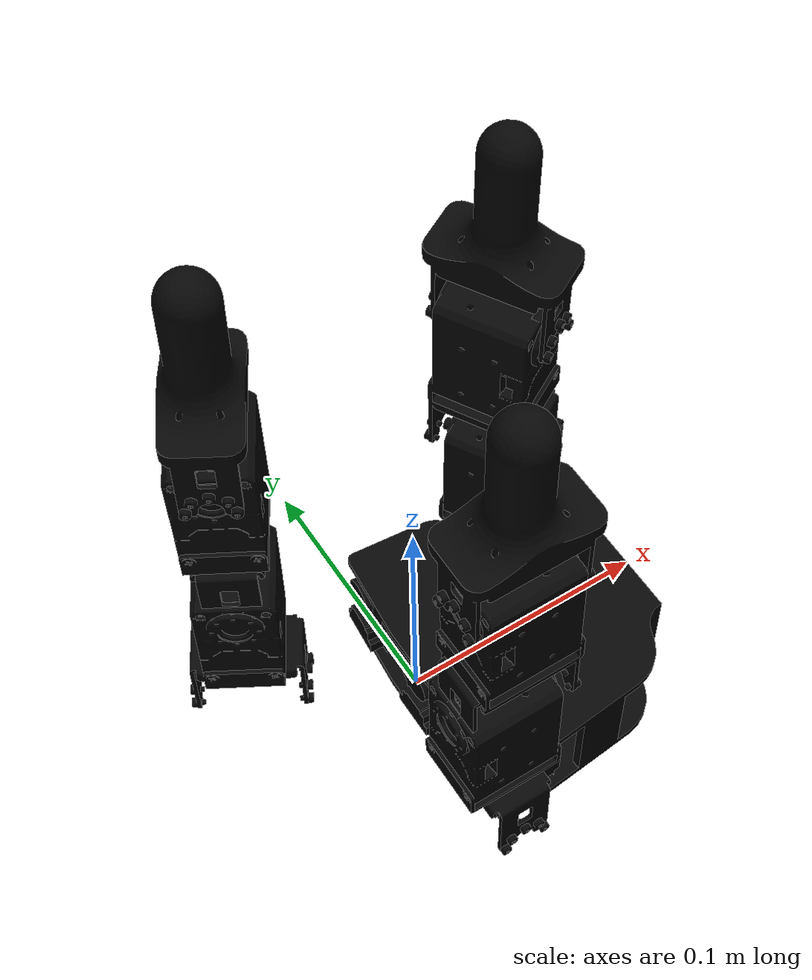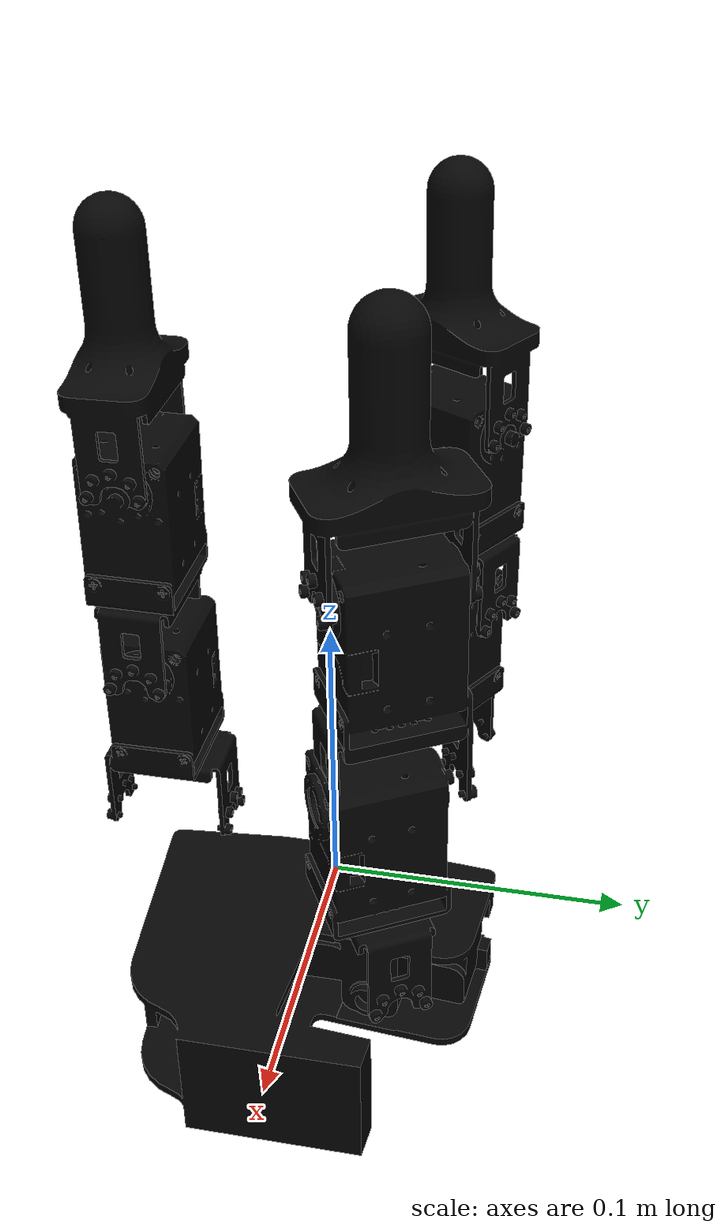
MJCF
<mujoco model="dclaw_gripper">
  <compiler angle="radian" autolimits="true" />
  <option gravity="0 0 0" timestep="0.001" />
  <visual>
    <global offwidth="3840" offheight="2160" />
  </visual>
  <asset>
    <mesh name="base_link" content_type="model/obj" file="meshes/visual/base_link.obj" />
    <mesh name="base_link_cylinder_collision000" content_type="model/obj" file="meshes/collision/base_link_cylinder_collision000.obj" />
    <mesh name="link_1" content_type="model/obj" file="meshes/visual/link_1.obj" />
    <mesh name="link_2" content_type="model/obj" file="meshes/visual/link_2.obj" />
    <mesh name="link_3" content_type="model/obj" file="meshes/visual/link_3.obj" />
    <mesh name="finger_tip_collision000" content_type="model/obj" file="meshes/collision/finger_tip_collision000.obj" />
    <material name="base_link_material" rgba="0.02352941 0.02352941 0.02352941 1" />
    <material name="link_1_material" rgba="0.02352941 0.02352941 0.02352941 1" />
    <material name="link_2_material" rgba="0.02352941 0.02352941 0.02352941 1" />
    <material name="link_3_material" rgba="0.02352941 0.02352941 0.02352941 1" />
    <texture type="skybox" builtin="gradient" rgb1="1 1 1" rgb2="1 1 1" width="32" height="512" />
  </asset>
  <worldbody>
    <light pos="0 0 5" dir="0 0 -1" directional="true" />
    <body name="hand_root">
      <body name="base_link" quat="0.707109 0 -0.707105 0">
        <inertial pos="0.0061371 0.00092103 0.0001376" quat="0.495846 0.868411 0 0" mass="0.23695" diaginertia="0.00032097 0.0001694 0.00016909" />
        <geom name="base_link_base_link_visual" type="mesh" contype="0" conaffinity="0" group="1" density="0" mesh="base_link" material="base_link_material" />
        <geom type="mesh" mesh="base_link_cylinder_collision000" group="3" />
        <geom size="0.013 0.02 0.025" pos="0.013 -0.059 -0.012" type="box" group="3" />
        <geom size="0.013 0.02 0.025" pos="0.013 0.02 0.058" quat="0.866025 0.500001 0 0" type="box" group="3" />
        <geom size="0.013 0.02 0.025" pos="0.013 0.042 -0.045" quat="0.866025 -0.500001 0 0" type="box" group="3" />
        <body name="link_f1_1" pos="0.013836 0.026467 0.054269" quat="0.258816 0.965927 0 0">
          <inertial pos="0.052938 -0.00497139 -0.000694028" quat="-6.54887e-05 0.707107 0.00116212 0.707106" mass="0.0500998" diaginertia="1.27968e-05 1.169e-05 8.46909e-06" />
          <joint name="joint_f1_0" pos="0 0 0" axis="0 -0.0015509 -0.999999" range="-0.524 1.32" actuatorfrcrange="-10 10" damping="0.1" armature="0.0002" frictionloss="0.0" />
          <geom name="link_f1_1_link_1_visual" type="mesh" contype="0" conaffinity="0" group="1" density="0" mesh="link_1" material="link_1_material" />
          <geom size="0.029 0.019 0.015" pos="0.05 -0.005 0" type="box" group="3" />
          <geom size="0.015 0.012 0.005" pos="0.013 -0.005 -0.018" type="box" group="3" />
          <geom size="0.015 0.012 0.005" pos="0.013 -0.005 0.018" type="box" group="3" />
          <body name="link_f1_2" pos="0.0684978 -0.00447059 -0.000694804">
            <inertial pos="0.0529346 4.2066e-05 -0.000658949" quat="0.000467686 0.711493 0.000697337 0.702692" mass="0.0500998" diaginertia="1.33904e-05 1.10965e-05 8.46907e-06" />
            <joint name="joint_f1_1" pos="0 0 0" axis="-0.0079404 0.999967 -0.00155082" range="-1.57 1.57" actuatorfrcrange="-10 10" damping="0.1" armature="0.0002" frictionloss="0.0" />
            <geom name="link_f1_2_link_2_visual" type="mesh" contype="0" conaffinity="0" group="1" density="0" mesh="link_2" material="link_2_material" />
            <geom size="0.029 0.018 0.015" pos="0.05 0 0" type="box" group="3" />
            <geom size="0.015 0.005 0.012" pos="0.013 0.018 0" type="box" group="3" />
            <geom size="0.015 0.005 0.012" pos="0.013 -0.018 0" type="box" group="3" />
            <body name="link_f1_3" pos="0.0684925 0.000542552 -0.000853424">
              <inertial pos="0.0442888 0.000352359 0.000434933" quat="-0.00227565 0.703618 0.00334478 0.710566" mass="0.0260029" diaginertia="8.6867e-06 7.1941e-06 3.47733e-06" />
              <joint name="joint_f1_2" pos="0 0 0" axis="0.0079404 -0.999967 0.00155082" range="-1.57 1.57" actuatorfrcrange="-10 10" damping="0.1" armature="0.0002" frictionloss="0.0" />
              <geom name="link_f1_3_link_3_visual" type="mesh" contype="0" conaffinity="0" group="1" density="0" mesh="link_3" material="link_3_material" />
              <geom type="mesh" mesh="finger_tip_collision000" group="3" />
              <geom size="0.015 0.005 0.012" pos="0.013 0.018 0" type="box" group="3" />
              <geom size="0.015 0.005 0.012" pos="0.013 -0.018 0" type="box" group="3" />
              <body name="link_f1_head" pos="0.084 0 0" />
            </body>
          </body>
        </body>
        <body name="link_f2_1" pos="0.0138356 0.0333216 -0.0509719" quat="0.258819 -0.965926 0 0">
          <inertial pos="0.0529366 0.0029921 -0.000173412" quat="-0.00232949 0.707103 0.00342611 0.707098" mass="0.0500998" diaginertia="1.27968e-05 1.169e-05 8.46909e-06" />
          <joint name="joint_f2_0" pos="0 0 0" axis="0 -0.00155087 -0.999999" range="-1.32 0.524" actuatorfrcrange="-10 10" damping="0.1" armature="0.0002" frictionloss="0.0" />
          <geom name="link_f2_1_link_1_visual" pos="0 0.008 0" quat="1 0 0 0" type="mesh" contype="0" conaffinity="0" group="1" density="0" mesh="link_1" material="link_1_material" />
          <geom size="0.029 0.019 0.015" pos="0.05 0.003 0" type="box" group="3" />
          <geom size="0.015 0.012 0.005" pos="0.013 0.003 -0.018" type="box" group="3" />
          <geom size="0.015 0.012 0.005" pos="0.013 0.003 0.018" type="box" group="3" />
          <body name="link_f2_2" pos="0.068493 0.00359253 -0.000174343">
            <inertial pos="0.0529373 0.000382054 -3.96042e-05" quat="-0.00183051 0.707365 0.00293286 0.70684" mass="0.0500998" diaginertia="1.33904e-05 1.10965e-05 8.46907e-06" />
            <joint name="joint_f2_1" pos="0 0 0" axis="-0.0143436 0.999896 -0.00155071" range="-1.57 1.57" actuatorfrcrange="-10 10" damping="0.1" armature="0.0002" frictionloss="0.0" />
            <geom name="link_f2_2_link_2_visual" type="mesh" contype="0" conaffinity="0" group="1" density="0" mesh="link_2" material="link_2_material" />
            <geom size="0.029 0.018 0.015" pos="0.05 0 0" type="box" group="3" />
            <geom size="0.015 0.005 0.012" pos="0.013 0.018 0" type="box" group="3" />
            <geom size="0.015 0.005 0.012" pos="0.013 -0.018 0" type="box" group="3" />
            <body name="link_f2_3" pos="0.0684929 0.000982456 -5.20041e-05">
              <inertial pos="0.0442877 0.000635363 3.24374e-05" quat="-0.00452546 0.706825 0.00561834 0.707351" mass="0.0260029" diaginertia="8.6867e-06 7.1941e-06 3.47733e-06" />
              <joint name="joint_f2_2" pos="0 0 0" axis="0.0143436 -0.999896 0.00155071" range="-1.57 1.57" actuatorfrcrange="-10 10" damping="0.1" armature="0.0002" frictionloss="0.0" />
              <geom name="link_f2_3_link_3_visual" type="mesh" contype="0" conaffinity="0" group="1" density="0" mesh="link_3" material="link_3_material" />
              <geom type="mesh" mesh="finger_tip_collision000" group="3" />
              <geom size="0.015 0.005 0.012" pos="0.013 0.018 0" type="box" group="3" />
              <geom size="0.015 0.005 0.012" pos="0.013 -0.018 0" type="box" group="3" />
              <body name="link_f2_head" pos="0.084 0 0" />
            </body>
          </body>
        </body>
        <body name="link_f3_1" pos="0.0138356 -0.0596332 0.000224327" quat="0.707107 0.707107 0 0">
          <inertial pos="0.0529378 0.000210782 -0.000208619" quat="-0.000845634 0.707106 0.00194226 0.707104" mass="0.0500998" diaginertia="1.27968e-05 1.169e-05 8.46909e-06" />
          <joint name="joint_f3_0" pos="0 0 0" axis="0 -0.00155087 -0.999999" range="-1.32 0.524" actuatorfrcrange="-10 10" damping="0.1" armature="0.0002" frictionloss="0.0" />
          <geom name="link_f3_1_link_1_visual" pos="0 0.005 0" quat="1 0 0 0" type="mesh" contype="0" conaffinity="0" group="1" density="0" mesh="link_1" material="link_1_material" />
          <geom size="0.029 0.019 0.015" pos="0.05 0 0" type="box" group="3" />
          <geom size="0.015 0.012 0.005" pos="0.013 0 -0.018" type="box" group="3" />
          <geom size="0.015 0.012 0.005" pos="0.013 0 0.018" type="box" group="3" />
          <body name="link_f3_2" pos="0.0684965 0.000745917 -0.000209449">
            <inertial pos="0.0529381 0.000160241 0.000200254" quat="-0.000362995 0.705766 0.00143585 0.708443" mass="0.0500998" diaginertia="1.33904e-05 1.10965e-05 8.46907e-06" />
            <joint name="joint_f3_1" pos="0 0 0" axis="-0.0101469 0.999947 -0.00155079" range="-1.57 1.57" actuatorfrcrange="-10 10" damping="0.1" armature="0.0002" frictionloss="0.0" />
            <geom name="link_f3_2_link_2_visual" type="mesh" contype="0" conaffinity="0" group="1" density="0" mesh="link_2" material="link_2_material" />
            <geom size="0.029 0.018 0.015" pos="0.05 0 0" type="box" group="3" />
            <geom size="0.015 0.005 0.012" pos="0.013 0.018 0" type="box" group="3" />
            <geom size="0.015 0.005 0.012" pos="0.013 -0.018 0" type="box" group="3" />
            <body name="link_f3_3" pos="0.068496 0.00069546 0.00025837">
              <inertial pos="0.0442683 0.000447053 -0.00138826" quat="-0.00297379 0.718091 0.00418284 0.695931" mass="0.0260029" diaginertia="8.6867e-06 7.1941e-06 3.47733e-06" />
              <joint name="joint_f3_2" pos="0 0 0" axis="-0.010147 0.999947 -0.0015508" range="-1.57 1.57" actuatorfrcrange="-10 10" damping="0.1" armature="0.0002" frictionloss="0.0" />
              <geom name="link_f3_3_link_3_visual" type="mesh" contype="0" conaffinity="0" group="1" density="0" mesh="link_3" material="link_3_material" />
              <geom type="mesh" mesh="finger_tip_collision000" group="3" />
              <geom size="0.015 0.005 0.012" pos="0.013 0.018 0" type="box" group="3" />
              <geom size="0.015 0.005 0.012" pos="0.013 -0.018 0" type="box" group="3" />
              <body name="link_f3_head" pos="0.084 0 0" />
            </body>
          </body>
        </body>
      </body>
    </body>
  </worldbody>
  <contact>
    <exclude name="ex_base_link_link_f1_1" body1="base_link" body2="link_f1_1" />
    <exclude name="ex_link_f1_1_link_f1_2" body1="link_f1_1" body2="link_f1_2" />
    <exclude name="ex_link_f1_2_link_f1_3" body1="link_f1_2" body2="link_f1_3" />
    <exclude name="ex_link_f1_3_link_f1_head" body1="link_f1_3" body2="link_f1_head" />
    <exclude name="ex_base_link_link_f2_1" body1="base_link" body2="link_f2_1" />
    <exclude name="ex_link_f2_1_link_f2_2" body1="link_f2_1" body2="link_f2_2" />
    <exclude name="ex_link_f2_2_link_f2_3" body1="link_f2_2" body2="link_f2_3" />
    <exclude name="ex_link_f2_3_link_f2_head" body1="link_f2_3" body2="link_f2_head" />
    <exclude name="ex_base_link_link_f3_1" body1="base_link" body2="link_f3_1" />
    <exclude name="ex_link_f3_1_link_f3_2" body1="link_f3_1" body2="link_f3_2" />
    <exclude name="ex_link_f3_2_link_f3_3" body1="link_f3_2" body2="link_f3_3" />
    <exclude name="ex_link_f3_3_link_f3_head" body1="link_f3_3" body2="link_f3_head" />
  </contact>
  <equality />
  <actuator>
    <position name="joint_f1_0_actuator" joint="joint_f1_0" kp="1" forcerange="-1 1" ctrlrange="-0.524 1.32" />
    <position name="joint_f1_1_actuator" joint="joint_f1_1" kp="1" forcerange="-1 1" ctrlrange="-1.57 1.57" />
    <position name="joint_f1_2_actuator" joint="joint_f1_2" kp="1" forcerange="-1 1" ctrlrange="-1.57 1.57" />
    <position name="joint_f2_0_actuator" joint="joint_f2_0" kp="1" forcerange="-1 1" ctrlrange="-1.32 0.524" />
    <position name="joint_f2_1_actuator" joint="joint_f2_1" kp="1" forcerange="-1 1" ctrlrange="-1.57 1.57" />
    <position name="joint_f2_2_actuator" joint="joint_f2_2" kp="1" forcerange="-1 1" ctrlrange="-1.57 1.57" />
    <position name="joint_f3_0_actuator" joint="joint_f3_0" kp="1" forcerange="-1 1" ctrlrange="-1.32 0.524" />
    <position name="joint_f3_1_actuator" joint="joint_f3_1" kp="1" forcerange="-1 1" ctrlrange="-1.57 1.57" />
    <position name="joint_f3_2_actuator" joint="joint_f3_2" kp="1" forcerange="-1 1" ctrlrange="-1.57 1.57" />
  </actuator>
</mujoco>
